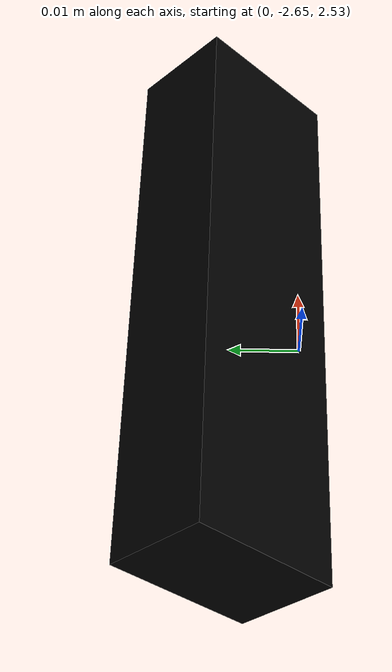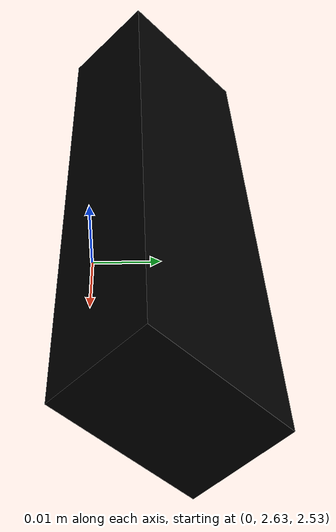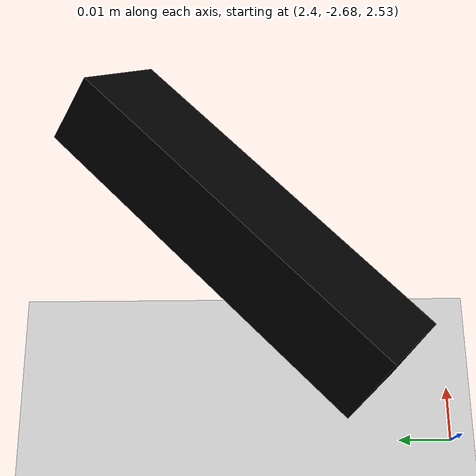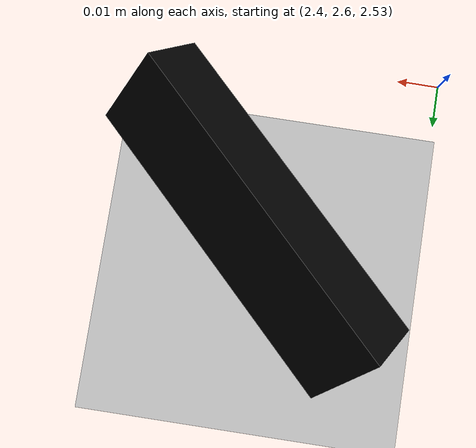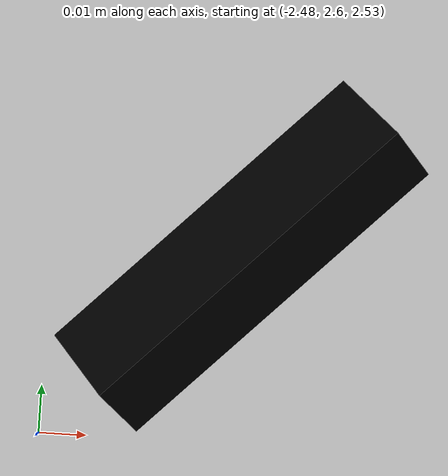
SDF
<?xml version="1.0" ?>
<sdf version="1.6">
  <world name="lab_world">
    <physics name="1ms" type="ignored">
      <max_step_size>0.003</max_step_size>
      <real_time_factor>1.0</real_time_factor>
    </physics>

    <plugin
      filename="gz-sim-physics-system"
      name="gz::sim::systems::Physics">
    </plugin>
    <plugin
      filename="gz-sim-user-commands-system"
      name="gz::sim::systems::UserCommands">
    </plugin>
    <plugin
      filename="gz-sim-scene-broadcaster-system"
      name="gz::sim::systems::SceneBroadcaster">
    </plugin>
    <plugin
      filename="gz-sim-sensors-system"
      name="gz::sim::systems::Sensors">
      <render_engine>ogre2</render_engine>
    </plugin>

    <!-- Light -->
    <light type="directional" name="sun">
      <cast_shadows>true</cast_shadows>
      <pose>0 0 10 0 0 0</pose>
      <diffuse>0.8 0.8 0.8 1</diffuse>
      <specular>0.2 0.2 0.2 1</specular>
      <attenuation>
        <range>1000</range>
        <constant>0.9</constant>
        <linear>0.01</linear>
        <quadratic>0.001</quadratic>
      </attenuation>
      <direction>-0.5 0.1 -0.9</direction>
    </light>

    <!-- This is the ground plane -->
    <model name='ground_plane'>
      <static>1</static>
      <link name='link'>
        <collision name='collision'>
          <geometry>
            <plane>
              <normal>0 0 1</normal>
              <size>100 100</size>
            </plane>
          </geometry>
          <surface>
            <friction>
              <ode>
                <mu>100</mu>
                <mu2>100</mu2>
              </ode>
            </friction>
            <bounce/>
            <contact/>
          </surface>
        </collision>
        <visual name='visual'>
          <geometry>
            <plane>
              <normal>0 0 1</normal>
              <size>100 100</size>
            </plane>
          </geometry>
          <material>
            <ambient>0.8 0.8 0.8 1</ambient>
            <diffuse>0.8 0.8 0.8 1</diffuse>
            <specular>0.8 0.8 0.8 1</specular>
          </material>
        </visual>
      </link>
      <pose>0 0 0 0 -0 0</pose>
    </model>

  <!-- Gravity -->
  <gravity>0 0 -9.8</gravity>

  <!-- Cameras -->
  <!-- Cameras move around starting with back left
      4   BlackBoard  3

      5     Robot     2

      6               1
  -->
  <!-- Camera 1-->
  <model name='camera_1'>
    <link name='camera_1_link'>
      <pose>-2.44 -2.64 2.54 0 0.785 0.785 </pose>
      <gravity>0</gravity>

      <visual name="camera_1_visual">
        <pose>0 0 0 0 0 0</pose>
        <geometry>
          <box>
            <size>0.015 0.08 0.022</size>
          </box>
        </geometry>
        <material>
          <ambient>0 0 0 1.0</ambient>
          <diffuse>0 0 0 1.0</diffuse>
          <specular>0.0 0.0 0.0 1.0</specular>
          <emissive>0.0 0.0 0.0 1.0</emissive>
        </material>
      </visual>
      <sensor name="camera_1" type="rgbd_camera">
        <visualize>true</visualize>
        <update_rate>10</update_rate>
        <topic>camera_1</topic>
        <gz_frame_id>camera_1_optical</gz_frame_id>
        <camera>
          <camera_info_topic>camera_1/camera_info</camera_info_topic>
          <horizontal_fov>1.089</horizontal_fov>
          <image>
            <format>R8G8B8</format>
            <width>640</width>
            <height>480</height>
          </image>
          <clip>
            <near>0.05</near>
            <far>8.0</far>
          </clip>
        </camera>
      </sensor>
    </link>

    <link name='camera_1_optical'>
      <pose relative_to="camera_1_link">0 0 0 -1.5707 0 -1.5707</pose>
      <gravity>0</gravity>
    </link>
  </model>

  <!-- Camera 2-->
  <model name='camera_2'>
    <link name='camera_2_link'>
      <pose>0 -2.64 2.54 0 0.785 1.5707 </pose>
      <gravity>0</gravity>

      <visual name="camera_2_visual">
        <pose>0 0 0 0 0 0</pose>
        <geometry>
          <box>
            <size>0.015 0.08 0.022</size>
          </box>
        </geometry>
        <material>
          <ambient>0 0 0 1.0</ambient>
          <diffuse>0 0 0 1.0</diffuse>
          <specular>0.0 0.0 0.0 1.0</specular>
          <emissive>0.0 0.0 0.0 1.0</emissive>
        </material>
      </visual>

      <sensor name="camera_2" type="rgbd_camera">
        <visualize>true</visualize>
        <update_rate>10</update_rate>
        <topic>camera_2</topic>
        <gz_frame_id>camera_2_link</gz_frame_id>
        <camera>
          <camera_info_topic>camera_2/camera_info</camera_info_topic>
          <horizontal_fov>1.089</horizontal_fov>
          <image>
            <format>R8G8B8</format>
            <width>640</width>
            <height>480</height>
          </image>
          <clip>
            <near>0.05</near>
            <far>8.0</far>
          </clip>
        </camera>
      </sensor>
    </link>
  </model>

  <!-- Camera 3-->
  <model name='camera_3'>
    <link name='camera_3_link'>
      <pose>2.44 -2.64 2.54 0 0.785 2.356 </pose>
      <gravity>0</gravity>

      <visual name="camera_3_visual">
        <pose>0 0 0 0 0 0</pose>
        <geometry>
          <box>
            <size>0.015 0.08 0.022</size>
          </box>
        </geometry>
        <material>
          <ambient>0 0 0 1.0</ambient>
          <diffuse>0 0 0 1.0</diffuse>
          <specular>0.0 0.0 0.0 1.0</specular>
          <emissive>0.0 0.0 0.0 1.0</emissive>
        </material>
      </visual>

      <sensor name="camera_3" type="rgbd_camera">
        <visualize>true</visualize>
        <update_rate>10</update_rate>
        <topic>camera_3</topic>
        <gz_frame_id>camera_3_link</gz_frame_id>
        <camera>
          <camera_info_topic>camera_3/camera_info</camera_info_topic>
          <horizontal_fov>1.089</horizontal_fov>
          <image>
            <format>R8G8B8</format>
            <width>640</width>
            <height>480</height>
          </image>
          <clip>
            <near>0.05</near>
            <far>8.0</far>
          </clip>
        </camera>
      </sensor>
    </link>
  </model>

  <!-- Camera 4-->
  <model name='camera_4'>
    <link name='camera_4_link'>
      <pose>2.44 2.64 2.54 0 0.785 3.927 </pose>
      <gravity>0</gravity>

      <visual name="camera_4_visual">
        <pose>0 0 0 0 0 0</pose>
        <geometry>
          <box>
            <size>0.015 0.08 0.022</size>
          </box>
        </geometry>
        <material>
          <ambient>0 0 0 1.0</ambient>
          <diffuse>0 0 0 1.0</diffuse>
          <specular>0.0 0.0 0.0 1.0</specular>
          <emissive>0.0 0.0 0.0 1.0</emissive>
        </material>
      </visual>

      <sensor name="camera_4" type="rgbd_camera">
        <visualize>true</visualize>
        <update_rate>10</update_rate>
        <topic>camera_4</topic>
        <gz_frame_id>camera_4_link</gz_frame_id>
        <camera>
          <camera_info_topic>camera_4/camera_info</camera_info_topic>
          <horizontal_fov>1.089</horizontal_fov>
          <image>
            <format>R8G8B8</format>
            <width>640</width>
            <height>480</height>
          </image>
          <clip>
            <near>0.05</near>
            <far>8.0</far>
          </clip>
        </camera>
      </sensor>
    </link>
  </model>

  <!-- Camera 5-->
  <model name='camera_5'>
    <link name='camera_5_link'>
      <pose>0 2.64 2.54 0 0.785 4.712 </pose>
      <gravity>0</gravity>

      <visual name="camera_5_visual">
        <pose>0 0 0 0 0 0</pose>
        <geometry>
          <box>
            <size>0.015 0.08 0.022</size>
          </box>
        </geometry>
        <material>
          <ambient>0 0 0 1.0</ambient>
          <diffuse>0 0 0 1.0</diffuse>
          <specular>0.0 0.0 0.0 1.0</specular>
          <emissive>0.0 0.0 0.0 1.0</emissive>
        </material>
      </visual>

      <sensor name="camera_5" type="rgbd_camera">
        <visualize>true</visualize>
        <update_rate>10</update_rate>
        <topic>camera_5</topic>
        <gz_frame_id>camera_5_link</gz_frame_id>
        <camera>
          <camera_info_topic>camera_5/camera_info</camera_info_topic>
          <horizontal_fov>1.089</horizontal_fov>
          <image>
            <format>R8G8B8</format>
            <width>640</width>
            <height>480</height>
          </image>
          <clip>
            <near>0.05</near>
            <far>8.0</far>
          </clip>
        </camera>
      </sensor>
    </link>
  </model>

  <!-- Camera 6-->
  <model name='camera_6'>
    <link name='camera_6_link'>
      <pose>-2.44 2.64 2.54 0 0.785 5.498 </pose>
      <gravity>0</gravity>

      <visual name="camera_6_visual">
        <pose>0 0 0 0 0 0</pose>
        <geometry>
          <box>
            <size>0.015 0.08 0.022</size>
          </box>
        </geometry>
        <material>
          <ambient>0 0 0 1.0</ambient>
          <diffuse>0 0 0 1.0</diffuse>
          <specular>0.0 0.0 0.0 1.0</specular>
          <emissive>0.0 0.0 0.0 1.0</emissive>
        </material>
      </visual>

      <sensor name="camera_6" type="rgbd_camera">
        <visualize>true</visualize>
        <update_rate>10</update_rate>
        <topic>camera_6</topic>
        <gz_frame_id>camera_6_link</gz_frame_id>
        <camera>
          <camera_info_topic>camera_6/camera_info</camera_info_topic>
          <horizontal_fov>1.089</horizontal_fov>
          <image>
            <format>R8G8B8</format>
            <width>640</width>
            <height>480</height>
          </image>
          <clip>
            <near>0.05</near>
            <far>8.0</far>
          </clip>
        </camera>
      </sensor>
    </link>
  </model>

  </world>
</sdf>
